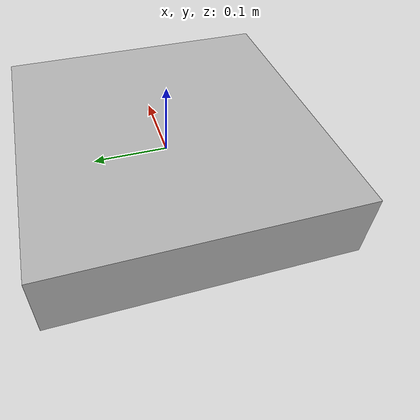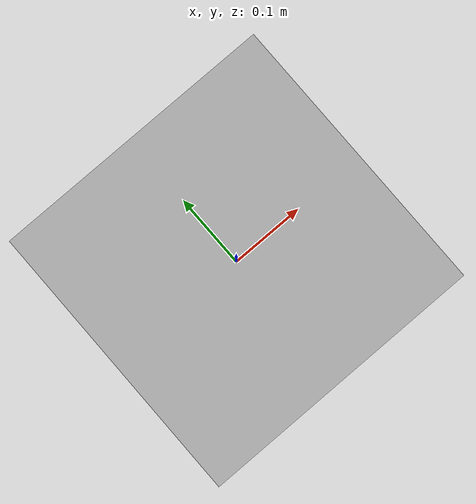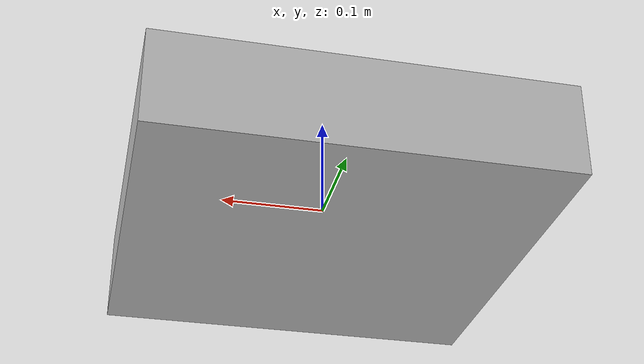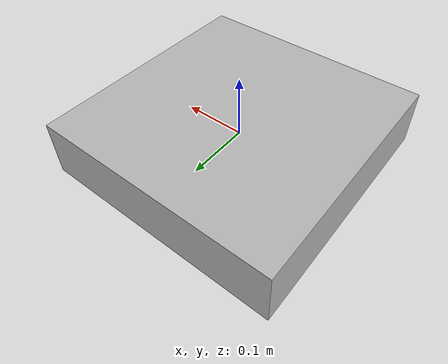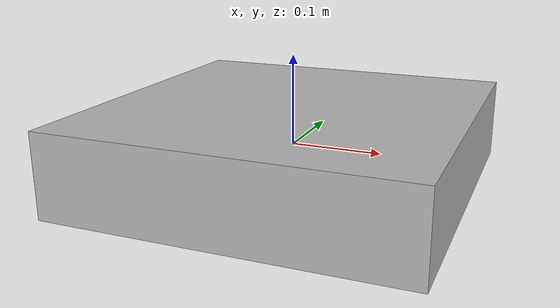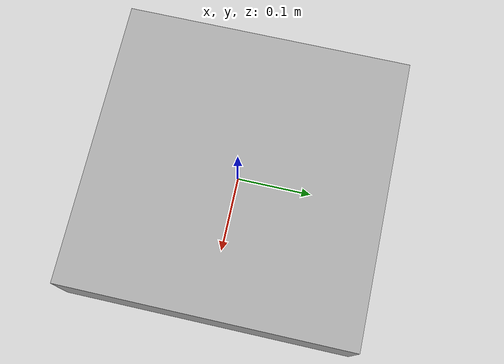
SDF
<?xml version="1.0" ?>
<sdf version="1.5">
  <model name="cinder_block_wide">
    <link name="link">
      <inertial>
        <pose>0 0 0.0714375 0 0 0</pose>
        <mass>5</mass>
        <!-- approximate as uniform box 0.387 x 0.387 x 0.092 m -->
        <inertia>
          <ixx>0.06814656666666667</ixx>
          <ixy>0.0000</ixy>
          <iyy>0.06814656666666667</iyy>
          <ixz>0.0000</ixz>
          <iyz>0.0000</iyz>
          <izz>0.1248075</izz>
        </inertia>
      </inertial>
      <visual name="visual">
        <geometry>

          <box>
            <size>0.387353556 0.387353556 0.092075</size>
          </box>
        </geometry>
      </visual>

      <collision name="block_collision">
       <pose>0 0 0 0 0 0</pose>
        <geometry>
          <box>
            <size>0.387353556 0.387353556 0.092075</size>
          </box>
        </geometry>
        <surface>
          <contact>
            <ode>
              <max_vel>0.1</max_vel>
              <min_depth>0.001</min_depth>
            </ode>
          </contact>
          <friction>
            <ode>
              <mu>1.0</mu>
              <mu2>1.0</mu2>
            </ode>
          </friction>
        </surface>

      </collision>

    </link>
  </model>
</sdf>
